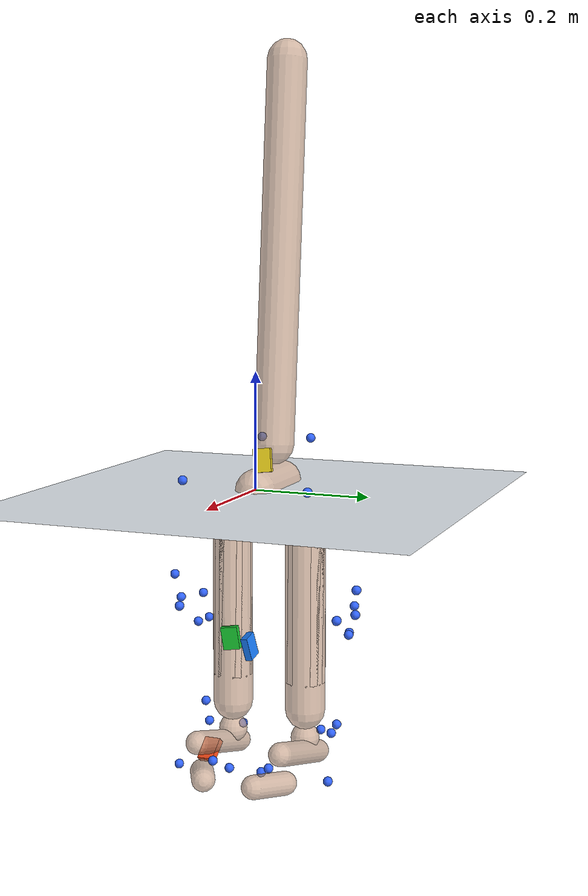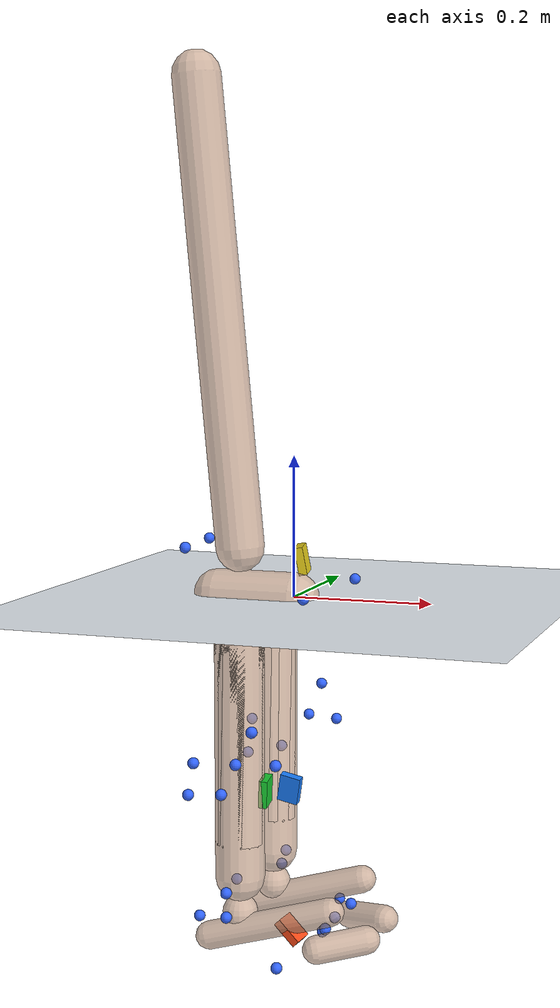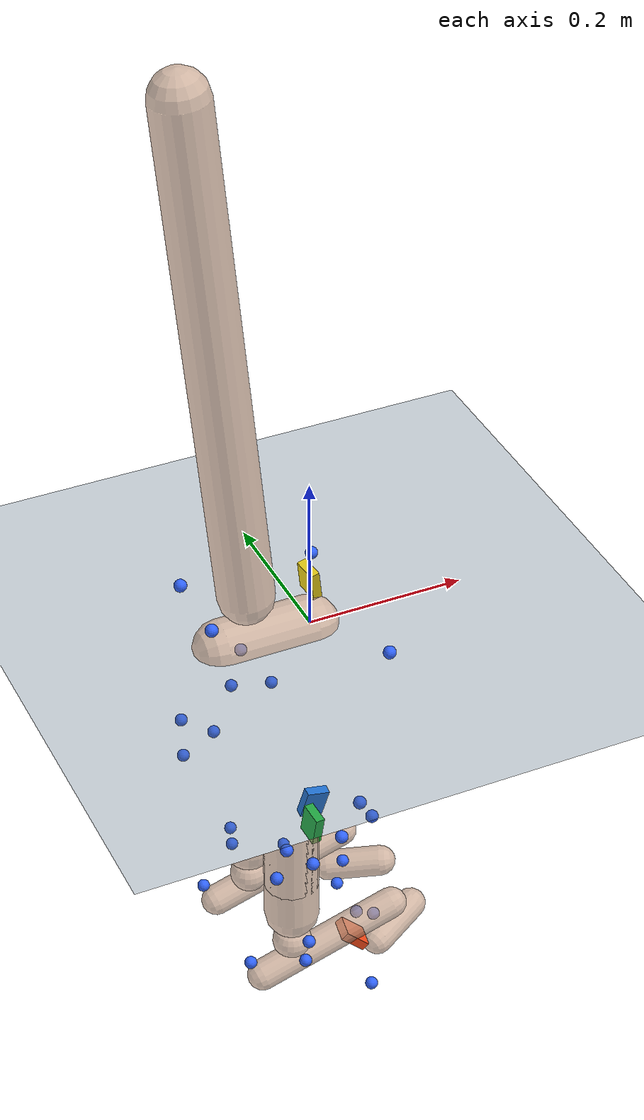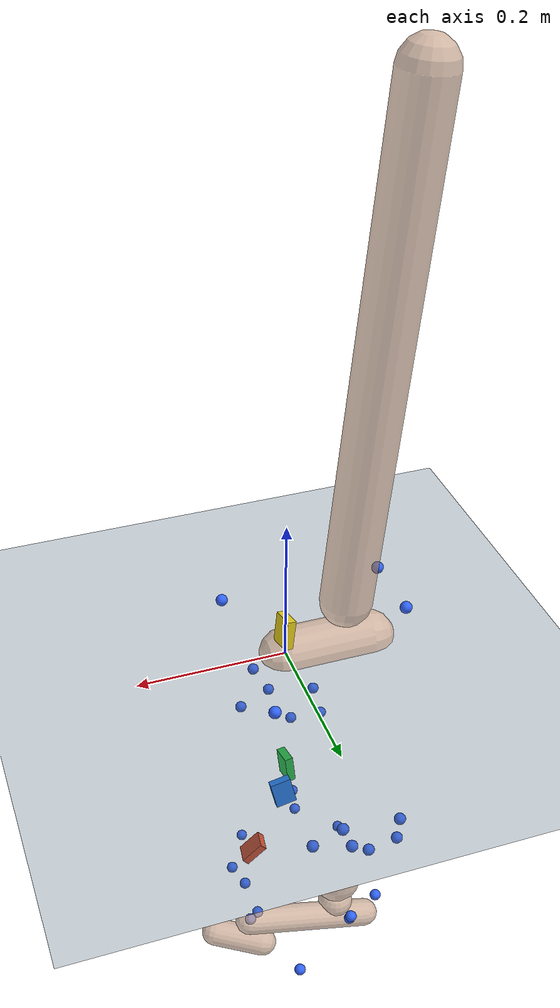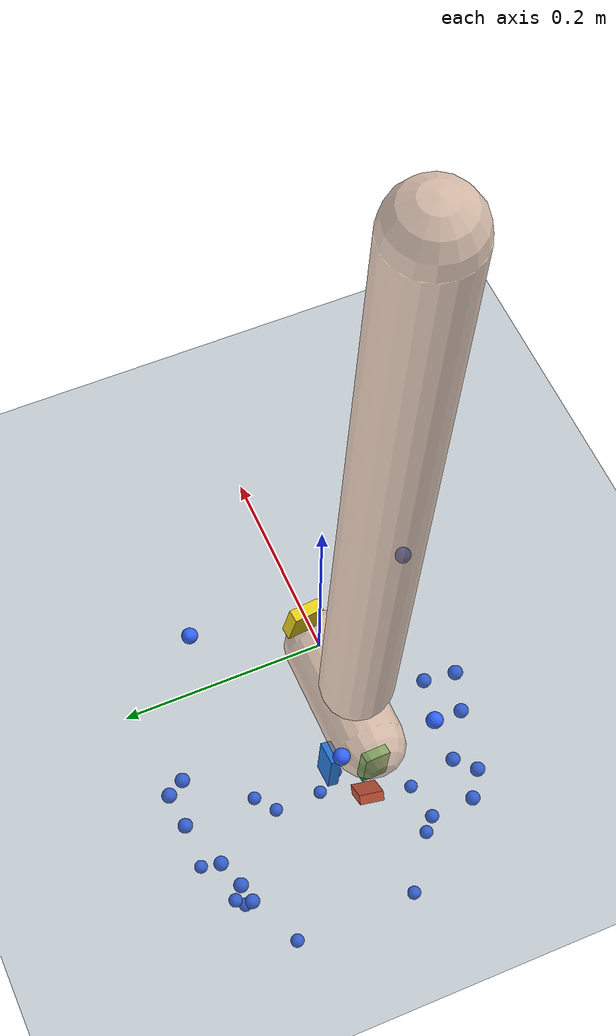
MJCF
<mujoco model="AB14">
  <compiler angle="radian" autolimits="true"/>
  <option timestep="0.005" gravity="0 0 -9.81"><flag contact="disable"/></option>
  <visual><global offwidth="1280" offheight="720"/></visual>
  <default><joint limited="false" damping="0"/><geom contype="0" conaffinity="0"/></default>
  <asset>
    <texture name="grid" type="2d" builtin="checker" rgb1="0.2 0.3 0.4" rgb2="0.3 0.4 0.5" width="512" height="512"/>
    <material name="grid" texture="grid" texrepeat="2 2" texuniform="true"/>
    <material name="skin" rgba="0.8 0.65 0.55 0.7"/>
  </asset>
  <worldbody>
    <light pos="0 0 4" dir="0 0 -1"/>
    <geom name="floor" type="plane" size="0 0 0.05" material="grid"/>
    <body name="pelvis" pos="0 0 0" quat="1 0 0 0">
      <joint name="pelvis_tx" type="slide" axis="1 0 0"/>
      <joint name="pelvis_ty" type="slide" axis="0 0 1"/>
      <joint name="pelvis_tz" type="slide" axis="0 -1 0"/>
      <joint name="pelvis_tilt" type="hinge" axis="0 -1 0"/>
      <joint name="pelvis_list" type="hinge" axis="1 0 0"/>
      <joint name="pelvis_rotation" type="hinge" axis="0 0 1"/>
      <inertial pos="-0.057851334 0 0" mass="9.15008" diaginertia="0.091500824 0.091500824 0.091500824"/>
      <geom type="capsule" fromto="0 0 0 -0.11570267 0 0" size="0.035" material="skin" mass="0"/>
      <site name="m_R_ASIS" pos="0.05207173 -0.11190089 0.017452318" size="0.008" rgba="0.2 0.4 1 1" group="2"/>
      <site name="m_L_ASIS" pos="0.053724558 0.11344676 0.01133429" size="0.008" rgba="0.2 0.4 1 1" group="2"/>
      <site name="m_L_PSIS" pos="-0.14741253 0.044029121 0.071787433" size="0.008" rgba="0.2 0.4 1 1" group="2"/>
      <site name="m_R_PSIS" pos="-0.14651177 -0.048314107 0.06990471" size="0.008" rgba="0.2 0.4 1 1" group="2"/>
      <body name="femur_r" pos="-0.057851334 -0.068325125 -0.054087315" quat="1 0 0 0">
        <joint name="hip_flexion_r" type="hinge" axis="0 -1 0"/>
        <joint name="hip_adduction_r" type="hinge" axis="1 0 0"/>
        <joint name="hip_rotation_r" type="hinge" axis="0 0 1"/>
        <inertial pos="0 0 -0.14398115" mass="7.22668" diaginertia="0.072266771 0.072266771 0.072266771"/>
        <geom type="capsule" fromto="0 0 0 0 0 -0.28796231" size="0.035" material="skin" mass="0"/>
        <site name="m_R_Thigh_Upper" pos="0.051710605 -0.087664113 -0.10614545" size="0.008" rgba="0.2 0.4 1 1" group="2"/>
        <site name="m_R_Thigh_Front" pos="0.078138368 -0.066662428 -0.155147" size="0.008" rgba="0.2 0.4 1 1" group="2"/>
        <site name="m_R_Thigh_Rear" pos="0.028132021 -0.087244078 -0.15282657" size="0.008" rgba="0.2 0.4 1 1" group="2"/>
        <site name="m_R_Knee_Lat" pos="-0.00018401753 -0.053259247 -0.34638537" size="0.008" rgba="0.2 0.4 1 1" group="2"/>
        <site name="imu_thigh" type="box" size="0.02 0.015 0.006" pos="0.055216447 0.055053356 -0.22032017" quat="0.50682713 0.58285748 -0.49450729 0.39857993" rgba="0.1 0.5 1 1" group="1"/>
        <body name="tibia_r" pos="0 0 0" quat="1 0 0 0">
          <joint name="knee_r_translation1" type="slide" axis="1 0 0"/>
          <joint name="knee_r_translation2" type="slide" axis="0 0 1"/>
          <joint name="knee_angle_r" type="hinge" axis="0 -1 0"/>
          <inertial pos="0 0 -0.16911481" mass="2.88052" diaginertia="0.028805239 0.028805239 0.028805239"/>
          <geom type="capsule" fromto="0 0 0 0 0 -0.33822961" size="0.035" material="skin" mass="0"/>
          <site name="m_R_Shank_Upper" pos="-0.038773323 -0.074984686 -0.15942267" size="0.008" rgba="0.2 0.4 1 1" group="2"/>
          <site name="m_R_Shank_Front" pos="-0.00095615085 -0.067740862 -0.20231826" size="0.008" rgba="0.2 0.4 1 1" group="2"/>
          <site name="m_R_Shank_Rear" pos="-0.049569803 -0.068567043 -0.20662182" size="0.008" rgba="0.2 0.4 1 1" group="2"/>
          <site name="m_R_Ankle_Lat" pos="-0.0024757829 -0.047517442 -0.38333732" size="0.008" rgba="0.2 0.4 1 1" group="2"/>
          <site name="imu_shank" type="box" size="0.02 0.015 0.006" pos="0.034343866 0.011179615 -0.21474604" quat="0.67818086 0.01436905 0.73033307 0.08048513" rgba="0.1 0.8 0.2 1" group="1"/>
          <body name="talus_r" pos="0 0 -0.38949848" quat="1 0 0 0">
            <joint name="ankle_angle_r" type="hinge" axis="-0.10501355 -0.97912632 -0.17402245"/>
            <inertial pos="0 0 0" mass="0.0776945" diaginertia="0.0007769451 0.0007769451 0.0007769451"/>
            <geom type="sphere" size="0.025" material="skin" mass="0"/>
            <body name="calcn_r" pos="-0.044176374 -0.0071740185 -0.037998747" quat="1 0 0 0">
              <joint name="subtalar_angle_r" type="hinge" axis="0.78717961 0.12094949 0.60474746"/>
              <inertial pos="0.090070965 0 0.02702129" mass="0.971181" diaginertia="0.0097118137 0.0097118137 0.0097118137"/>
              <geom type="capsule" fromto="0 0 0 0.18014193 0 0.054042579" size="0.02" material="skin" mass="0"/>
              <site name="m_R_Heel" pos="-0.015673242 0.0013754282 0.026449134" size="0.008" rgba="0.2 0.4 1 1" group="2"/>
              <site name="m_R_Toe_Lat" pos="0.12381018 -0.061787036 -0.010797787" size="0.008" rgba="0.2 0.4 1 1" group="2"/>
              <site name="m_R_Toe_Med" pos="0.1535598 0.047244725 0.0072181812" size="0.008" rgba="0.2 0.4 1 1" group="2"/>
              <site name="m_R_Toe_Tip" pos="0.16606283 0.022150298 0.020803538" size="0.008" rgba="0.2 0.4 1 1" group="2"/>
              <site name="imu_foot" type="box" size="0.02 0.015 0.006" pos="0.1242524 -0.0020349112 0.02335257" quat="0.92415413 0.059289804 0.37282434 -0.058530991" rgba="1 0.3 0.1 1" group="1"/>
              <body name="toes_r" pos="0.16104689 -0.00097276643 -0.0018014193" quat="1 0 0 0">
                <joint name="mtp_angle_r" type="hinge" axis="-0.5809544 -0.81393611 0"/>
                <inertial pos="0.031164554 0.015762419 0.0054042579" mass="0.168286" diaginertia="0.0016828631 0.0016828631 0.0016828631"/>
                <geom type="capsule" fromto="0 0 0 0.062329108 0.031524838 0.010808516" size="0.02" material="skin" mass="0"/>
              </body>
            </body>
          </body>
        </body>
      </body>
      <body name="femur_l" pos="-0.057851334 0.068325125 -0.054087315" quat="1 0 0 0">
        <joint name="hip_flexion_l" type="hinge" axis="0 -1 0"/>
        <joint name="hip_adduction_l" type="hinge" axis="-1 0 0"/>
        <joint name="hip_rotation_l" type="hinge" axis="0 0 -1"/>
        <inertial pos="0 0 -0.14398115" mass="7.22668" diaginertia="0.072266771 0.072266771 0.072266771"/>
        <geom type="capsule" fromto="0 0 0 0 0 -0.28796231" size="0.035" material="skin" mass="0"/>
        <site name="m_L_Thigh_Upper" pos="0.039484577 0.10616092 -0.10804107" size="0.008" rgba="0.2 0.4 1 1" group="2"/>
        <site name="m_L_Thigh_Front" pos="0.071054924 0.08222778 -0.15492638" size="0.008" rgba="0.2 0.4 1 1" group="2"/>
        <site name="m_L_Thigh_Rear" pos="0.021755389 0.098385062 -0.15544382" size="0.008" rgba="0.2 0.4 1 1" group="2"/>
        <site name="m_L_Knee_Lat" pos="-0.0012221092 0.057895817 -0.35924393" size="0.008" rgba="0.2 0.4 1 1" group="2"/>
        <body name="tibia_l" pos="0 0 0" quat="1 0 0 0">
          <joint name="knee_l_translation1" type="slide" axis="1 0 0"/>
          <joint name="knee_l_translation2" type="slide" axis="0 0 1"/>
          <joint name="knee_angle_l" type="hinge" axis="0 -1 0"/>
          <inertial pos="0 0 -0.16911481" mass="2.88052" diaginertia="0.028805239 0.028805239 0.028805239"/>
          <geom type="capsule" fromto="0 0 0 0 0 -0.33822961" size="0.035" material="skin" mass="0"/>
          <site name="m_L_Shank_Upper" pos="-0.059883594 0.069236049 -0.16221937" size="0.008" rgba="0.2 0.4 1 1" group="2"/>
          <site name="m_L_Shank_Front" pos="-0.013999471 0.074539669 -0.20188041" size="0.008" rgba="0.2 0.4 1 1" group="2"/>
          <site name="m_L_Shank_Rear" pos="-0.062880522 0.058999633 -0.2121337" size="0.008" rgba="0.2 0.4 1 1" group="2"/>
          <site name="m_L_Ankle_Lat" pos="-0.0041439538 0.047035306 -0.37727876" size="0.008" rgba="0.2 0.4 1 1" group="2"/>
          <body name="talus_l" pos="0 0 -0.38949848" quat="1 0 0 0">
            <joint name="ankle_angle_l" type="hinge" axis="0.10501355 -0.97912632 0.17402245"/>
            <inertial pos="0 0 0" mass="0.0776945" diaginertia="0.0007769451 0.0007769451 0.0007769451"/>
            <geom type="sphere" size="0.025" material="skin" mass="0"/>
            <body name="calcn_l" pos="-0.044176374 0.0071740185 -0.037998747" quat="1 0 0 0">
              <joint name="subtalar_angle_l" type="hinge" axis="-0.78717961 0.12094949 -0.60474746"/>
              <inertial pos="0.090070965 0 0.02702129" mass="0.971181" diaginertia="0.0097118137 0.0097118137 0.0097118137"/>
              <geom type="capsule" fromto="0 0 0 0.18014193 0 0.054042579" size="0.02" material="skin" mass="0"/>
              <site name="m_L_Heel" pos="-0.0176336 -0.00022121553 0.032514396" size="0.008" rgba="0.2 0.4 1 1" group="2"/>
              <site name="m_L_Toe_Lat" pos="0.1246534 0.064290711 -0.0030158574" size="0.008" rgba="0.2 0.4 1 1" group="2"/>
              <site name="m_L_Toe_Med" pos="0.15277184 -0.045541107 0.0078305873" size="0.008" rgba="0.2 0.4 1 1" group="2"/>
              <site name="m_L_Toe_Tip" pos="0.17082643 -0.024669744 0.023598606" size="0.008" rgba="0.2 0.4 1 1" group="2"/>
              <body name="toes_l" pos="0.16104689 0.00097276643 -0.0018014193" quat="1 0 0 0">
                <joint name="mtp_angle_l" type="hinge" axis="0.5809544 -0.81393611 0"/>
                <inertial pos="0.031164554 -0.015762419 0.0054042579" mass="0.168286" diaginertia="0.0016828631 0.0016828631 0.0016828631"/>
                <geom type="capsule" fromto="0 0 0 0.062329108 -0.031524838 0.010808516" size="0.02" material="skin" mass="0"/>
              </body>
            </body>
          </body>
        </body>
      </body>
      <body name="torso" pos="-0.082399283 0 0.066688595" quat="1 0 0 0">
        <joint name="lumbar_extension" type="hinge" axis="0 -1 0"/>
        <joint name="lumbar_bending" type="hinge" axis="1 0 0"/>
        <joint name="lumbar_rotation" type="hinge" axis="0 0 1"/>
        <inertial pos="-0.03105903 0 0.33129632" mass="26.6" diaginertia="0.26599959 0.26599959 0.26599959"/>
        <geom type="capsule" fromto="0 0 0 -0.062118061 0 0.66259265" size="0.035" material="skin" mass="0"/>
        <site name="imu_trunk" type="box" size="0.02 0.015 0.006" pos="0.089016897 0.015274961 -0.014571029" quat="0.758211 -0.0059971474 0.64586797 0.089076806" rgba="0.9 0.8 0.1 1" group="1"/>
      </body>
    </body>
  </worldbody>
  <sensor>
<accelerometer name="imu_foot_acc" site="imu_foot"/>
<gyro name="imu_foot_gyr" site="imu_foot"/>
<accelerometer name="imu_shank_acc" site="imu_shank"/>
<gyro name="imu_shank_gyr" site="imu_shank"/>
<accelerometer name="imu_thigh_acc" site="imu_thigh"/>
<gyro name="imu_thigh_gyr" site="imu_thigh"/>
<accelerometer name="imu_trunk_acc" site="imu_trunk"/>
<gyro name="imu_trunk_gyr" site="imu_trunk"/>
</sensor>
</mujoco>
